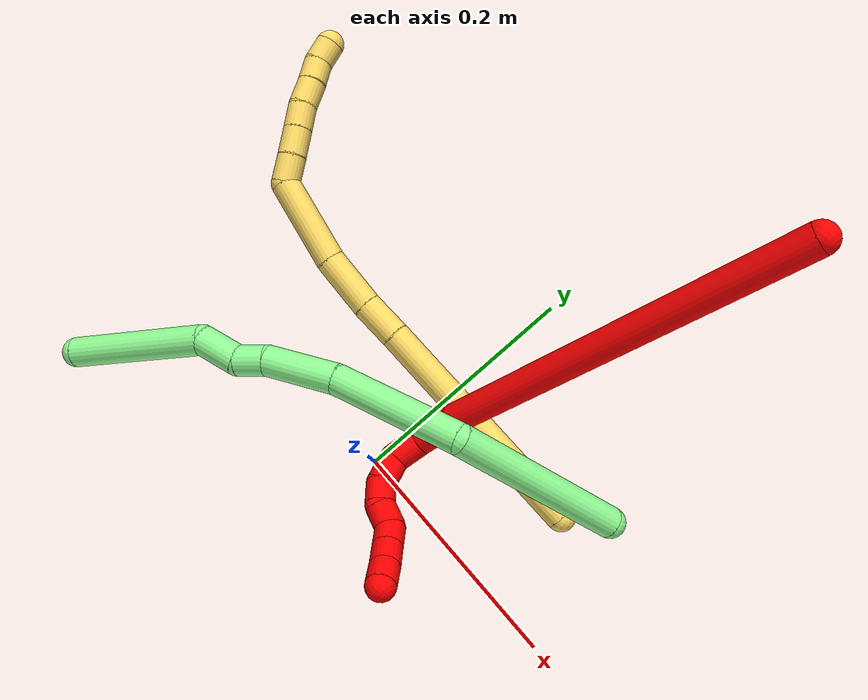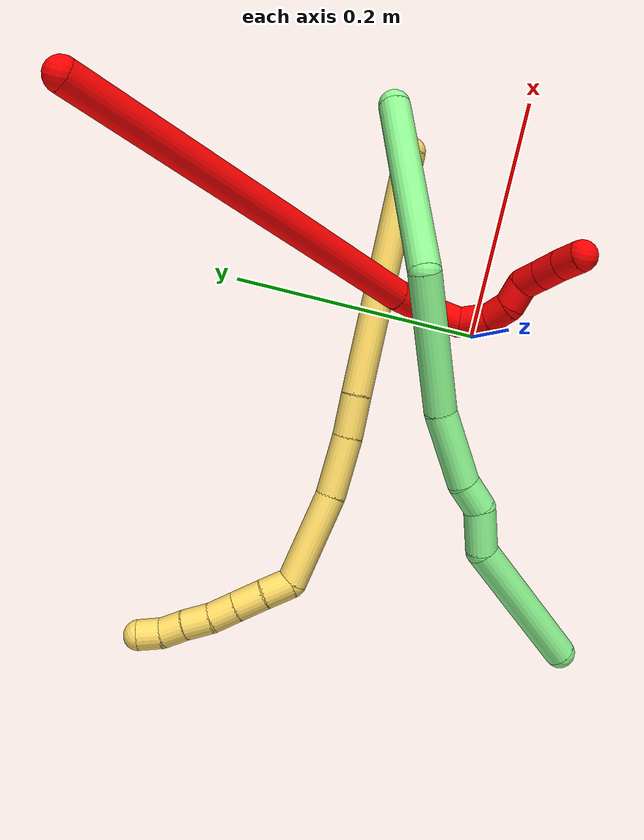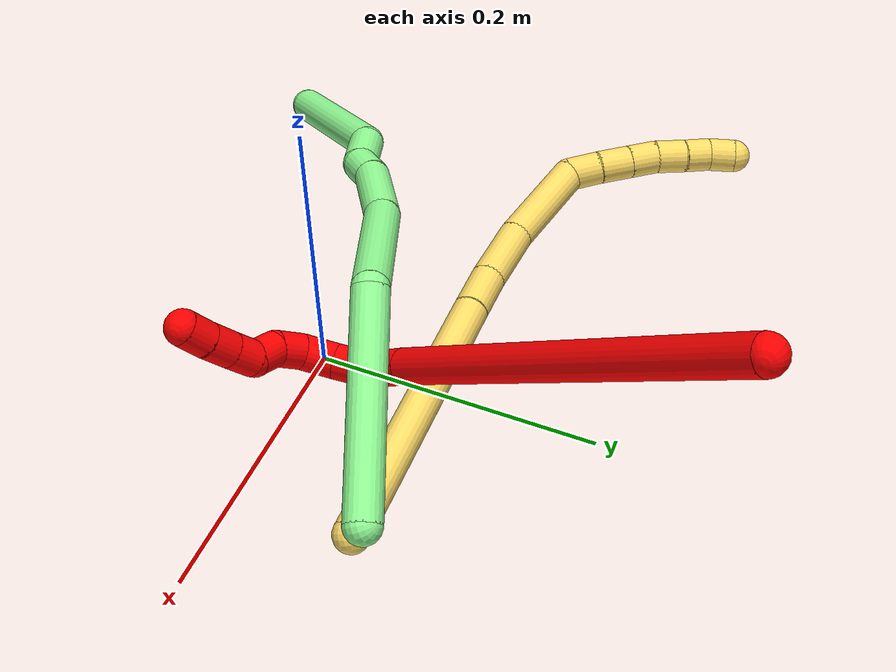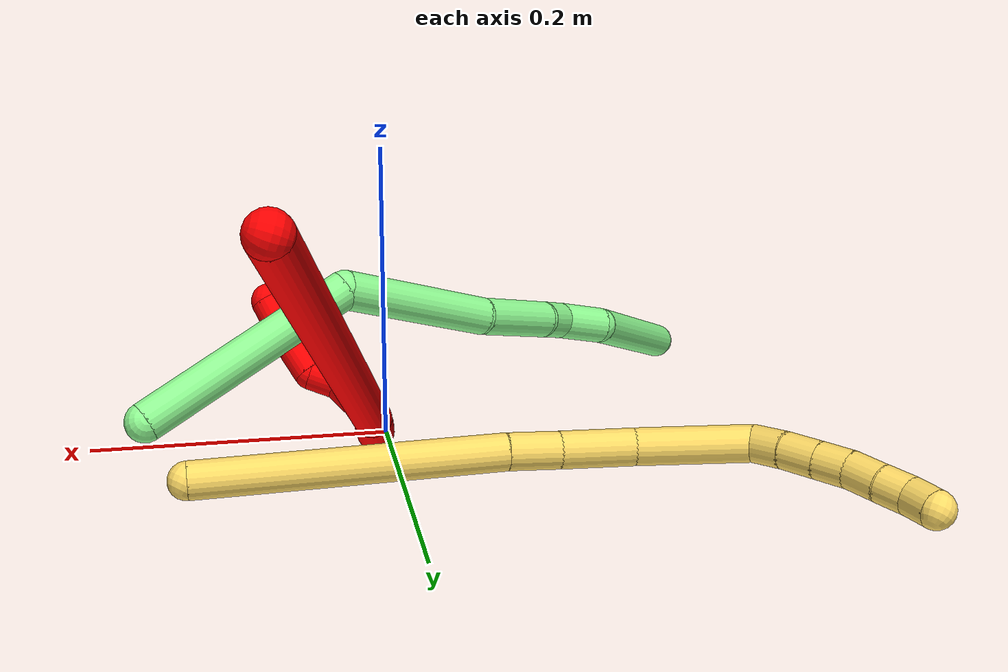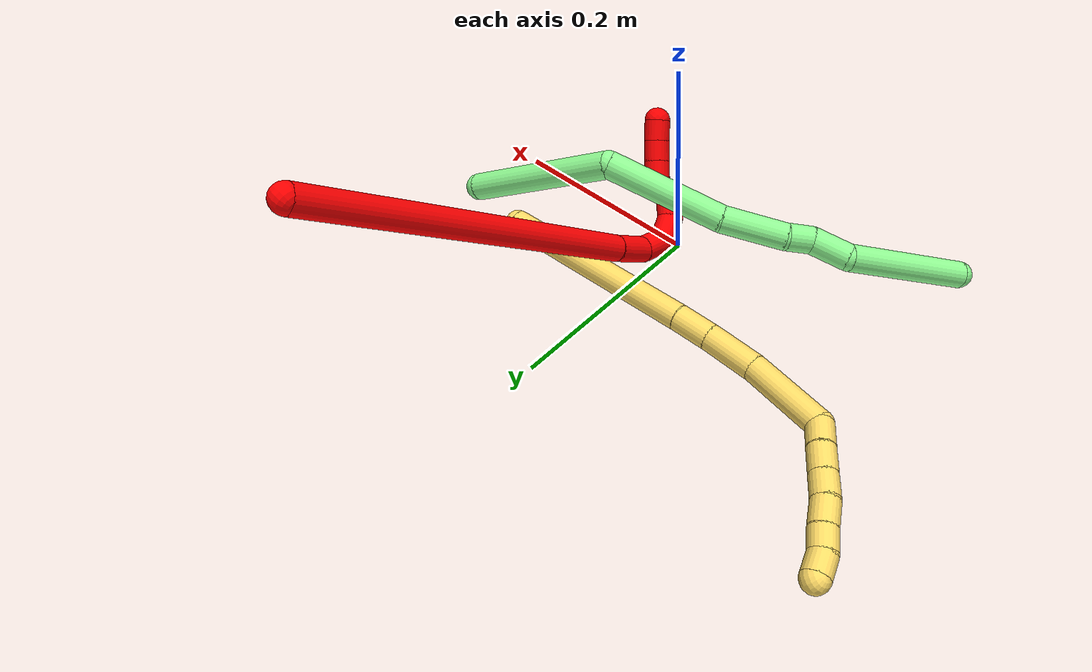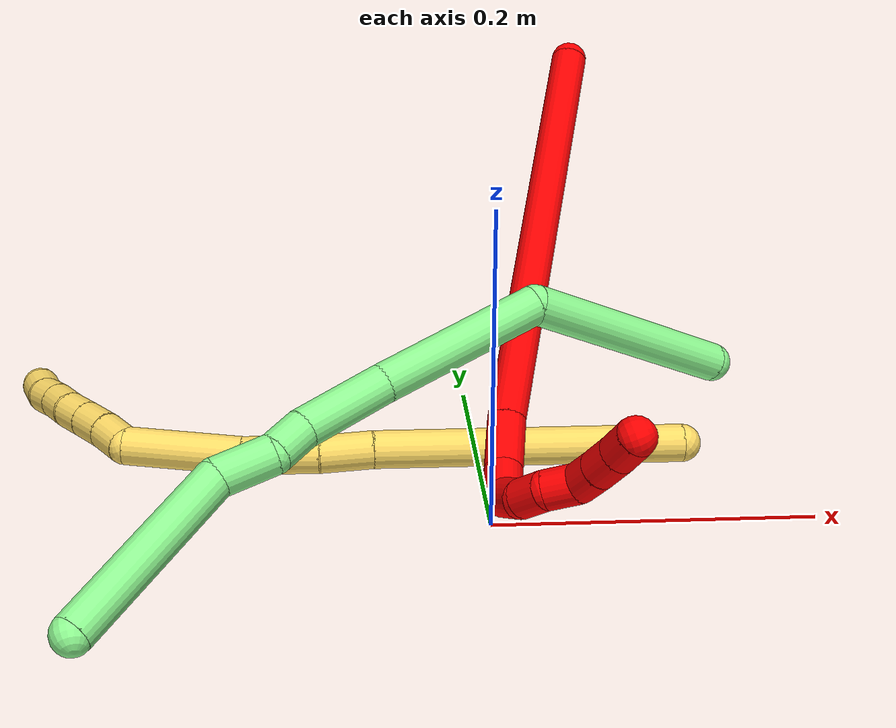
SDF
<sdf version="1.7">
 <world name="default">
  <model name="2">
   <static>0</static>
   <link name="2">
    <collision name="collision-cylinder-e_1_1_4">
     <pose>-0.049286 -0.130496 -0.066776 2.04377 -0.324347 -0.522774</pose>
     <geometry><cylinder><radius>0.0125</radius><length>0.309305</length></cylinder></geometry>
     <surface>
      <friction><ode><mu>1.16</mu><mu2>1.16</mu2><slip1>0</slip1><slip2>0</slip2></ode></friction>
      <contact><ode><kp>1e+06</kp><kd>1</kd><max_vel>0</max_vel><min_depth>0.001</min_depth></ode></contact>
     </surface>
    </collision>
    <visual name="visual-cylinder-e_1_1_4">
     <pose>-0.049286 -0.130496 -0.066776 2.04377 -0.324347 -0.522774</pose>
     <geometry><cylinder><radius>0.0125</radius><length>0.309305</length></cylinder></geometry>
     <material><ambient>1 0 0 1</ambient></material>
    </visual>
    <collision name="collision-cylinder-e_2_4_5">
     <pose>-0.104956 -0.277418 -0.139903 1.93978 -0.347762 -0.501716</pose>
     <geometry><cylinder><radius>0.0125</radius><length>0.037465</length></cylinder></geometry>
     <surface>
      <friction><ode><mu>1.16</mu><mu2>1.16</mu2><slip1>0</slip1><slip2>0</slip2></ode></friction>
      <contact><ode><kp>1e+06</kp><kd>1</kd><max_vel>0</max_vel><min_depth>0.001</min_depth></ode></contact>
     </surface>
    </collision>
    <visual name="visual-cylinder-e_2_4_5">
     <pose>-0.104956 -0.277418 -0.139903 1.93978 -0.347762 -0.501716</pose>
     <geometry><cylinder><radius>0.0125</radius><length>0.037465</length></cylinder></geometry>
     <material><ambient>1 0 0 1</ambient></material>
    </visual>
    <collision name="collision-cylinder-e_3_5_6">
     <pose>-0.120292 -0.303394 -0.148806 1.83178 -0.735899 -0.930455</pose>
     <geometry><cylinder><radius>0.0125</radius><length>0.026674</length></cylinder></geometry>
     <surface>
      <friction><ode><mu>1.16</mu><mu2>1.16</mu2><slip1>0</slip1><slip2>0</slip2></ode></friction>
      <contact><ode><kp>1e+06</kp><kd>1</kd><max_vel>0</max_vel><min_depth>0.001</min_depth></ode></contact>
     </surface>
    </collision>
    <visual name="visual-cylinder-e_3_5_6">
     <pose>-0.120292 -0.303394 -0.148806 1.83178 -0.735899 -0.930455</pose>
     <geometry><cylinder><radius>0.0125</radius><length>0.026674</length></cylinder></geometry>
     <material><ambient>1 0 0 1</ambient></material>
    </visual>
    <collision name="collision-cylinder-e_4_6_7">
     <pose>-0.139786 -0.31722 -0.145979 0.671642 -0.993217 -0.373879</pose>
     <geometry><cylinder><radius>0.0125</radius><length>0.025164</length></cylinder></geometry>
     <surface>
      <friction><ode><mu>1.16</mu><mu2>1.16</mu2><slip1>0</slip1><slip2>0</slip2></ode></friction>
      <contact><ode><kp>1e+06</kp><kd>1</kd><max_vel>0</max_vel><min_depth>0.001</min_depth></ode></contact>
     </surface>
    </collision>
    <visual name="visual-cylinder-e_4_6_7">
     <pose>-0.139786 -0.31722 -0.145979 0.671642 -0.993217 -0.373879</pose>
     <geometry><cylinder><radius>0.0125</radius><length>0.025164</length></cylinder></geometry>
     <material><ambient>1 0 0 1</ambient></material>
    </visual>
    <collision name="collision-cylinder-e_5_7_8">
     <pose>-0.157018 -0.322874 -0.132696 0.172761 -0.695018 -0.062711</pose>
     <geometry><cylinder><radius>0.0125</radius><length>0.020897</length></cylinder></geometry>
     <surface>
      <friction><ode><mu>1.16</mu><mu2>1.16</mu2><slip1>0</slip1><slip2>0</slip2></ode></friction>
      <contact><ode><kp>1e+06</kp><kd>1</kd><max_vel>0</max_vel><min_depth>0.001</min_depth></ode></contact>
     </surface>
    </collision>
    <visual name="visual-cylinder-e_5_7_8">
     <pose>-0.157018 -0.322874 -0.132696 0.172761 -0.695018 -0.062711</pose>
     <geometry><cylinder><radius>0.0125</radius><length>0.020897</length></cylinder></geometry>
     <material><ambient>1 0 0 1</ambient></material>
    </visual>
    <collision name="collision-cylinder-e_6_8_9">
     <pose>-0.165735 -0.326116 -0.11493 0.186601 -0.199185 -0.0187</pose>
     <geometry><cylinder><radius>0.0125</radius><length>0.020474</length></cylinder></geometry>
     <surface>
      <friction><ode><mu>1.16</mu><mu2>1.16</mu2><slip1>0</slip1><slip2>0</slip2></ode></friction>
      <contact><ode><kp>1e+06</kp><kd>1</kd><max_vel>0</max_vel><min_depth>0.001</min_depth></ode></contact>
     </surface>
    </collision>
    <visual name="visual-cylinder-e_6_8_9">
     <pose>-0.165735 -0.326116 -0.11493 0.186601 -0.199185 -0.0187</pose>
     <geometry><cylinder><radius>0.0125</radius><length>0.020474</length></cylinder></geometry>
     <material><ambient>1 0 0 1</ambient></material>
    </visual>
    <collision name="collision-cylinder-e_7_9_10">
     <pose>-0.175137 -0.327476 -0.098332 -0.074273 -0.829245 0.032702</pose>
     <geometry><cylinder><radius>0.0125</radius><length>0.020006</length></cylinder></geometry>
     <surface>
      <friction><ode><mu>1.16</mu><mu2>1.16</mu2><slip1>0</slip1><slip2>0</slip2></ode></friction>
      <contact><ode><kp>1e+06</kp><kd>1</kd><max_vel>0</max_vel><min_depth>0.001</min_depth></ode></contact>
     </surface>
    </collision>
    <visual name="visual-cylinder-e_7_9_10">
     <pose>-0.175137 -0.327476 -0.098332 -0.074273 -0.829245 0.032702</pose>
     <geometry><cylinder><radius>0.0125</radius><length>0.020006</length></cylinder></geometry>
     <material><ambient>1 0 0 1</ambient></material>
    </visual>
    <collision name="collision-cylinder-e_8_10_11">
     <pose>-0.189857 -0.326084 -0.084855 -0.131324 -0.823936 0.057452</pose>
     <geometry><cylinder><radius>0.0125</radius><length>0.020015</length></cylinder></geometry>
     <surface>
      <friction><ode><mu>1.16</mu><mu2>1.16</mu2><slip1>0</slip1><slip2>0</slip2></ode></friction>
      <contact><ode><kp>1e+06</kp><kd>1</kd><max_vel>0</max_vel><min_depth>0.001</min_depth></ode></contact>
     </surface>
    </collision>
    <visual name="visual-cylinder-e_8_10_11">
     <pose>-0.189857 -0.326084 -0.084855 -0.131324 -0.823936 0.057452</pose>
     <geometry><cylinder><radius>0.0125</radius><length>0.020015</length></cylinder></geometry>
     <material><ambient>1 0 0 1</ambient></material>
    </visual>
    <collision name="collision-cylinder-e_9_11_2">
     <pose>-0.204918 -0.32397 -0.071873 -0.193646 -0.881461 0.09156</pose>
     <geometry><cylinder><radius>0.0125</radius><length>0.020001</length></cylinder></geometry>
     <surface>
      <friction><ode><mu>1.16</mu><mu2>1.16</mu2><slip1>0</slip1><slip2>0</slip2></ode></friction>
      <contact><ode><kp>1e+06</kp><kd>1</kd><max_vel>0</max_vel><min_depth>0.001</min_depth></ode></contact>
     </surface>
    </collision>
    <visual name="visual-cylinder-e_9_11_2">
     <pose>-0.204918 -0.32397 -0.071873 -0.193646 -0.881461 0.09156</pose>
     <geometry><cylinder><radius>0.0125</radius><length>0.020001</length></cylinder></geometry>
     <material><ambient>1 0 0 1</ambient></material>
    </visual>
    <collision name="collision-sphere-2">
     <pose>-0.212635 -0.322746 -0.065631 0 -0 0</pose>
     <geometry><sphere><radius>0.0125</radius></sphere></geometry>
     <surface>
      <friction><ode><mu>1.16</mu><mu2>1.16</mu2><slip1>0</slip1><slip2>0</slip2></ode></friction>
      <contact><ode><kp>1e+06</kp><kd>1</kd><max_vel>0</max_vel><min_depth>0.001</min_depth></ode></contact>
     </surface>
    </collision>
    <visual name="visual-sphere-2">
     <pose>-0.212635 -0.322746 -0.065631 0 -0 0</pose>
     <geometry><sphere><radius>0.0125</radius></sphere></geometry>
     <material><ambient>1 0 0 1</ambient></material>
    </visual>
    <collision name="collision-sphere-11">
     <pose>-0.197201 -0.325194 -0.078115 0 -0 0</pose>
     <geometry><sphere><radius>0.0125</radius></sphere></geometry>
     <surface>
      <friction><ode><mu>1.16</mu><mu2>1.16</mu2><slip1>0</slip1><slip2>0</slip2></ode></friction>
      <contact><ode><kp>1e+06</kp><kd>1</kd><max_vel>0</max_vel><min_depth>0.001</min_depth></ode></contact>
     </surface>
    </collision>
    <visual name="visual-sphere-11">
     <pose>-0.197201 -0.325194 -0.078115 0 -0 0</pose>
     <geometry><sphere><radius>0.0125</radius></sphere></geometry>
     <material><ambient>1 0 0 1</ambient></material>
    </visual>
    <collision name="collision-sphere-10">
     <pose>-0.182514 -0.326974 -0.091595 0 -0 0</pose>
     <geometry><sphere><radius>0.0125</radius></sphere></geometry>
     <surface>
      <friction><ode><mu>1.16</mu><mu2>1.16</mu2><slip1>0</slip1><slip2>0</slip2></ode></friction>
      <contact><ode><kp>1e+06</kp><kd>1</kd><max_vel>0</max_vel><min_depth>0.001</min_depth></ode></contact>
     </surface>
    </collision>
    <visual name="visual-sphere-10">
     <pose>-0.182514 -0.326974 -0.091595 0 -0 0</pose>
     <geometry><sphere><radius>0.0125</radius></sphere></geometry>
     <material><ambient>1 0 0 1</ambient></material>
    </visual>
    <collision name="collision-sphere-9">
     <pose>-0.167761 -0.327977 -0.10507 0 -0 0</pose>
     <geometry><sphere><radius>0.0125</radius></sphere></geometry>
     <surface>
      <friction><ode><mu>1.16</mu><mu2>1.16</mu2><slip1>0</slip1><slip2>0</slip2></ode></friction>
      <contact><ode><kp>1e+06</kp><kd>1</kd><max_vel>0</max_vel><min_depth>0.001</min_depth></ode></contact>
     </surface>
    </collision>
    <visual name="visual-sphere-9">
     <pose>-0.167761 -0.327977 -0.10507 0 -0 0</pose>
     <geometry><sphere><radius>0.0125</radius></sphere></geometry>
     <material><ambient>1 0 0 1</ambient></material>
    </visual>
    <collision name="collision-sphere-4">
     <pose>-0.098572 -0.260992 -0.133552 0 -0 0</pose>
     <geometry><sphere><radius>0.0125</radius></sphere></geometry>
     <surface>
      <friction><ode><mu>1.16</mu><mu2>1.16</mu2><slip1>0</slip1><slip2>0</slip2></ode></friction>
      <contact><ode><kp>1e+06</kp><kd>1</kd><max_vel>0</max_vel><min_depth>0.001</min_depth></ode></contact>
     </surface>
    </collision>
    <visual name="visual-sphere-4">
     <pose>-0.098572 -0.260992 -0.133552 0 -0 0</pose>
     <geometry><sphere><radius>0.0125</radius></sphere></geometry>
     <material><ambient>1 0 0 1</ambient></material>
    </visual>
    <collision name="collision-sphere-1">
     <geometry><sphere><radius>0.0125</radius></sphere></geometry>
     <surface>
      <friction><ode><mu>1.16</mu><mu2>1.16</mu2><slip1>0</slip1><slip2>0</slip2></ode></friction>
      <contact><ode><kp>1e+06</kp><kd>1</kd><max_vel>0</max_vel><min_depth>0.001</min_depth></ode></contact>
     </surface>
    </collision>
    <visual name="visual-sphere-1">
     <geometry><sphere><radius>0.0125</radius></sphere></geometry>
     <material><ambient>1 0 0 1</ambient></material>
    </visual>
    <collision name="collision-sphere-8">
     <pose>-0.16371 -0.324254 -0.124791 0 -0 0</pose>
     <geometry><sphere><radius>0.0125</radius></sphere></geometry>
     <surface>
      <friction><ode><mu>1.16</mu><mu2>1.16</mu2><slip1>0</slip1><slip2>0</slip2></ode></friction>
      <contact><ode><kp>1e+06</kp><kd>1</kd><max_vel>0</max_vel><min_depth>0.001</min_depth></ode></contact>
     </surface>
    </collision>
    <visual name="visual-sphere-8">
     <pose>-0.16371 -0.324254 -0.124791 0 -0 0</pose>
     <geometry><sphere><radius>0.0125</radius></sphere></geometry>
     <material><ambient>1 0 0 1</ambient></material>
    </visual>
    <collision name="collision-sphere-5">
     <pose>-0.11134 -0.293843 -0.146255 0 -0 0</pose>
     <geometry><sphere><radius>0.0125</radius></sphere></geometry>
     <surface>
      <friction><ode><mu>1.16</mu><mu2>1.16</mu2><slip1>0</slip1><slip2>0</slip2></ode></friction>
      <contact><ode><kp>1e+06</kp><kd>1</kd><max_vel>0</max_vel><min_depth>0.001</min_depth></ode></contact>
     </surface>
    </collision>
    <visual name="visual-sphere-5">
     <pose>-0.11134 -0.293843 -0.146255 0 -0 0</pose>
     <geometry><sphere><radius>0.0125</radius></sphere></geometry>
     <material><ambient>1 0 0 1</ambient></material>
    </visual>
    <collision name="collision-sphere-6">
     <pose>-0.129245 -0.312945 -0.151357 0 -0 0</pose>
     <geometry><sphere><radius>0.0125</radius></sphere></geometry>
     <surface>
      <friction><ode><mu>1.16</mu><mu2>1.16</mu2><slip1>0</slip1><slip2>0</slip2></ode></friction>
      <contact><ode><kp>1e+06</kp><kd>1</kd><max_vel>0</max_vel><min_depth>0.001</min_depth></ode></contact>
     </surface>
    </collision>
    <visual name="visual-sphere-6">
     <pose>-0.129245 -0.312945 -0.151357 0 -0 0</pose>
     <geometry><sphere><radius>0.0125</radius></sphere></geometry>
     <material><ambient>1 0 0 1</ambient></material>
    </visual>
    <collision name="collision-sphere-7">
     <pose>-0.150327 -0.321495 -0.140601 0 -0 0</pose>
     <geometry><sphere><radius>0.0125</radius></sphere></geometry>
     <surface>
      <friction><ode><mu>1.16</mu><mu2>1.16</mu2><slip1>0</slip1><slip2>0</slip2></ode></friction>
      <contact><ode><kp>1e+06</kp><kd>1</kd><max_vel>0</max_vel><min_depth>0.001</min_depth></ode></contact>
     </surface>
    </collision>
    <visual name="visual-sphere-7">
     <pose>-0.150327 -0.321495 -0.140601 0 -0 0</pose>
     <geometry><sphere><radius>0.0125</radius></sphere></geometry>
     <material><ambient>1 0 0 1</ambient></material>
    </visual>
    <inertial>
     <pose>-0.087959 -0.199627 -0.087535 0 -0 0</pose>
     <mass>0.5</mass>
     <inertia>
      <ixx>0.000854</ixx>
      <ixy>0</ixy>
      <ixz>0</ixz>
      <iyy>-0.00182</iyy>
      <iyz>0</iyz>
      <izz>0.002894</izz>
     </inertia>
    </inertial>
   </link>
   <pose>0.085245 0.309718 0.221928 1.1243 0.611475 1.32199</pose>
  </model>
  <model name="5">
   <static>0</static>
   <link name="5">
    <collision name="collision-cylinder-e_1_1_4">
     <pose>-0.022255 -0.083192 0.054402 0.991658 -0.220256 -0.119478</pose>
     <geometry><cylinder><radius>0.0125</radius><length>0.203722</length></cylinder></geometry>
     <surface>
      <friction><ode><mu>1.16</mu><mu2>1.16</mu2><slip1>0</slip1><slip2>0</slip2></ode></friction>
      <contact><ode><kp>1e+06</kp><kd>1</kd><max_vel>0</max_vel><min_depth>0.001</min_depth></ode></contact>
     </surface>
    </collision>
    <visual name="visual-cylinder-e_1_1_4">
     <pose>-0.022255 -0.083192 0.054402 0.991658 -0.220256 -0.119478</pose>
     <geometry><cylinder><radius>0.0125</radius><length>0.203722</length></cylinder></geometry>
     <material><ambient>1 0.858824 0.4 1</ambient></material>
    </visual>
    <collision name="collision-cylinder-e_2_4_5">
     <pose>-0.04776 -0.181348 0.117382 1.0503 -0.1863 -0.108155</pose>
     <geometry><cylinder><radius>0.0125</radius><length>0.035105</length></cylinder></geometry>
     <surface>
      <friction><ode><mu>1.16</mu><mu2>1.16</mu2><slip1>0</slip1><slip2>0</slip2></ode></friction>
      <contact><ode><kp>1e+06</kp><kd>1</kd><max_vel>0</max_vel><min_depth>0.001</min_depth></ode></contact>
     </surface>
    </collision>
    <visual name="visual-cylinder-e_2_4_5">
     <pose>-0.04776 -0.181348 0.117382 1.0503 -0.1863 -0.108155</pose>
     <geometry><cylinder><radius>0.0125</radius><length>0.035105</length></cylinder></geometry>
     <material><ambient>1 0.858824 0.4 1</ambient></material>
    </visual>
    <collision name="collision-cylinder-e_3_5_6">
     <pose>-0.057718 -0.217119 0.138294 1.0357 -0.270491 -0.154738</pose>
     <geometry><cylinder><radius>0.0125</radius><length>0.0502</length></cylinder></geometry>
     <surface>
      <friction><ode><mu>1.16</mu><mu2>1.16</mu2><slip1>0</slip1><slip2>0</slip2></ode></friction>
      <contact><ode><kp>1e+06</kp><kd>1</kd><max_vel>0</max_vel><min_depth>0.001</min_depth></ode></contact>
     </surface>
    </collision>
    <visual name="visual-cylinder-e_3_5_6">
     <pose>-0.057718 -0.217119 0.138294 1.0357 -0.270491 -0.154738</pose>
     <geometry><cylinder><radius>0.0125</radius><length>0.0502</length></cylinder></geometry>
     <material><ambient>1 0.858824 0.4 1</ambient></material>
    </visual>
    <collision name="collision-cylinder-e_4_6_7">
     <pose>-0.080258 -0.268475 0.16847 1.04219 -0.420795 -0.243953</pose>
     <geometry><cylinder><radius>0.0125</radius><length>0.07752</length></cylinder></geometry>
     <surface>
      <friction><ode><mu>1.16</mu><mu2>1.16</mu2><slip1>0</slip1><slip2>0</slip2></ode></friction>
      <contact><ode><kp>1e+06</kp><kd>1</kd><max_vel>0</max_vel><min_depth>0.001</min_depth></ode></contact>
     </surface>
    </collision>
    <visual name="visual-cylinder-e_4_6_7">
     <pose>-0.080258 -0.268475 0.16847 1.04219 -0.420795 -0.243953</pose>
     <geometry><cylinder><radius>0.0125</radius><length>0.07752</length></cylinder></geometry>
     <material><ambient>1 0.858824 0.4 1</ambient></material>
    </visual>
    <collision name="collision-cylinder-e_5_7_8">
     <pose>-0.106969 -0.304293 0.186828 1.47339 -1.11792 -1.03215</pose>
     <geometry><cylinder><radius>0.0125</radius><length>0.024195</length></cylinder></geometry>
     <surface>
      <friction><ode><mu>1.16</mu><mu2>1.16</mu2><slip1>0</slip1><slip2>0</slip2></ode></friction>
      <contact><ode><kp>1e+06</kp><kd>1</kd><max_vel>0</max_vel><min_depth>0.001</min_depth></ode></contact>
     </surface>
    </collision>
    <visual name="visual-cylinder-e_5_7_8">
     <pose>-0.106969 -0.304293 0.186828 1.47339 -1.11792 -1.03215</pose>
     <geometry><cylinder><radius>0.0125</radius><length>0.024195</length></cylinder></geometry>
     <material><ambient>1 0.858824 0.4 1</ambient></material>
    </visual>
    <collision name="collision-cylinder-e_6_8_9">
     <pose>-0.1284 -0.31568 0.187359 1.56808 -1.04535 -1.043</pose>
     <geometry><cylinder><radius>0.0125</radius><length>0.024397</length></cylinder></geometry>
     <surface>
      <friction><ode><mu>1.16</mu><mu2>1.16</mu2><slip1>0</slip1><slip2>0</slip2></ode></friction>
      <contact><ode><kp>1e+06</kp><kd>1</kd><max_vel>0</max_vel><min_depth>0.001</min_depth></ode></contact>
     </surface>
    </collision>
    <visual name="visual-cylinder-e_6_8_9">
     <pose>-0.1284 -0.31568 0.187359 1.56808 -1.04535 -1.043</pose>
     <geometry><cylinder><radius>0.0125</radius><length>0.024397</length></cylinder></geometry>
     <material><ambient>1 0.858824 0.4 1</ambient></material>
    </visual>
    <collision name="collision-cylinder-e_7_9_10">
     <pose>-0.148418 -0.327405 0.187382 1.56969 -1.03603 -1.03508</pose>
     <geometry><cylinder><radius>0.0125</radius><length>0.022003</length></cylinder></geometry>
     <surface>
      <friction><ode><mu>1.16</mu><mu2>1.16</mu2><slip1>0</slip1><slip2>0</slip2></ode></friction>
      <contact><ode><kp>1e+06</kp><kd>1</kd><max_vel>0</max_vel><min_depth>0.001</min_depth></ode></contact>
     </surface>
    </collision>
    <visual name="visual-cylinder-e_7_9_10">
     <pose>-0.148418 -0.327405 0.187382 1.56969 -1.03603 -1.03508</pose>
     <geometry><cylinder><radius>0.0125</radius><length>0.022003</length></cylinder></geometry>
     <material><ambient>1 0.858824 0.4 1</ambient></material>
    </visual>
    <collision name="collision-cylinder-e_8_10_11">
     <pose>-0.168039 -0.337964 0.185717 1.89626 -1.09553 -1.40864</pose>
     <geometry><cylinder><radius>0.0125</radius><length>0.022842</length></cylinder></geometry>
     <surface>
      <friction><ode><mu>1.16</mu><mu2>1.16</mu2><slip1>0</slip1><slip2>0</slip2></ode></friction>
      <contact><ode><kp>1e+06</kp><kd>1</kd><max_vel>0</max_vel><min_depth>0.001</min_depth></ode></contact>
     </surface>
    </collision>
    <visual name="visual-cylinder-e_8_10_11">
     <pose>-0.168039 -0.337964 0.185717 1.89626 -1.09553 -1.40864</pose>
     <geometry><cylinder><radius>0.0125</radius><length>0.022842</length></cylinder></geometry>
     <material><ambient>1 0.858824 0.4 1</ambient></material>
    </visual>
    <collision name="collision-cylinder-e_9_11_12">
     <pose>-0.186713 -0.348037 0.182885 1.79378 -1.0184 -1.22021</pose>
     <geometry><cylinder><radius>0.0125</radius><length>0.020016</length></cylinder></geometry>
     <surface>
      <friction><ode><mu>1.16</mu><mu2>1.16</mu2><slip1>0</slip1><slip2>0</slip2></ode></friction>
      <contact><ode><kp>1e+06</kp><kd>1</kd><max_vel>0</max_vel><min_depth>0.001</min_depth></ode></contact>
     </surface>
    </collision>
    <visual name="visual-cylinder-e_9_11_12">
     <pose>-0.186713 -0.348037 0.182885 1.79378 -1.0184 -1.22021</pose>
     <geometry><cylinder><radius>0.0125</radius><length>0.020016</length></cylinder></geometry>
     <material><ambient>1 0.858824 0.4 1</ambient></material>
    </visual>
    <collision name="collision-cylinder-e_10_12_2">
     <pose>-0.204565 -0.355884 0.179384 2.2801 -1.20331 -1.96194</pose>
     <geometry><cylinder><radius>0.0125</radius><length>0.020001</length></cylinder></geometry>
     <surface>
      <friction><ode><mu>1.16</mu><mu2>1.16</mu2><slip1>0</slip1><slip2>0</slip2></ode></friction>
      <contact><ode><kp>1e+06</kp><kd>1</kd><max_vel>0</max_vel><min_depth>0.001</min_depth></ode></contact>
     </surface>
    </collision>
    <visual name="visual-cylinder-e_10_12_2">
     <pose>-0.204565 -0.355884 0.179384 2.2801 -1.20331 -1.96194</pose>
     <geometry><cylinder><radius>0.0125</radius><length>0.020001</length></cylinder></geometry>
     <material><ambient>1 0.858824 0.4 1</ambient></material>
    </visual>
    <collision name="collision-sphere-2">
     <pose>-0.213898 -0.358611 0.177043 0 -0 0</pose>
     <geometry><sphere><radius>0.0125</radius></sphere></geometry>
     <surface>
      <friction><ode><mu>1.16</mu><mu2>1.16</mu2><slip1>0</slip1><slip2>0</slip2></ode></friction>
      <contact><ode><kp>1e+06</kp><kd>1</kd><max_vel>0</max_vel><min_depth>0.001</min_depth></ode></contact>
     </surface>
    </collision>
    <visual name="visual-sphere-2">
     <pose>-0.213898 -0.358611 0.177043 0 -0 0</pose>
     <geometry><sphere><radius>0.0125</radius></sphere></geometry>
     <material><ambient>1 0.858824 0.4 1</ambient></material>
    </visual>
    <collision name="collision-sphere-12">
     <pose>-0.195232 -0.353158 0.181724 0 -0 0</pose>
     <geometry><sphere><radius>0.0125</radius></sphere></geometry>
     <surface>
      <friction><ode><mu>1.16</mu><mu2>1.16</mu2><slip1>0</slip1><slip2>0</slip2></ode></friction>
      <contact><ode><kp>1e+06</kp><kd>1</kd><max_vel>0</max_vel><min_depth>0.001</min_depth></ode></contact>
     </surface>
    </collision>
    <visual name="visual-sphere-12">
     <pose>-0.195232 -0.353158 0.181724 0 -0 0</pose>
     <geometry><sphere><radius>0.0125</radius></sphere></geometry>
     <material><ambient>1 0.858824 0.4 1</ambient></material>
    </visual>
    <collision name="collision-sphere-11">
     <pose>-0.178194 -0.342915 0.184046 0 -0 0</pose>
     <geometry><sphere><radius>0.0125</radius></sphere></geometry>
     <surface>
      <friction><ode><mu>1.16</mu><mu2>1.16</mu2><slip1>0</slip1><slip2>0</slip2></ode></friction>
      <contact><ode><kp>1e+06</kp><kd>1</kd><max_vel>0</max_vel><min_depth>0.001</min_depth></ode></contact>
     </surface>
    </collision>
    <visual name="visual-sphere-11">
     <pose>-0.178194 -0.342915 0.184046 0 -0 0</pose>
     <geometry><sphere><radius>0.0125</radius></sphere></geometry>
     <material><ambient>1 0.858824 0.4 1</ambient></material>
    </visual>
    <collision name="collision-sphere-10">
     <pose>-0.157884 -0.333012 0.187388 0 -0 0</pose>
     <geometry><sphere><radius>0.0125</radius></sphere></geometry>
     <surface>
      <friction><ode><mu>1.16</mu><mu2>1.16</mu2><slip1>0</slip1><slip2>0</slip2></ode></friction>
      <contact><ode><kp>1e+06</kp><kd>1</kd><max_vel>0</max_vel><min_depth>0.001</min_depth></ode></contact>
     </surface>
    </collision>
    <visual name="visual-sphere-10">
     <pose>-0.157884 -0.333012 0.187388 0 -0 0</pose>
     <geometry><sphere><radius>0.0125</radius></sphere></geometry>
     <material><ambient>1 0.858824 0.4 1</ambient></material>
    </visual>
    <collision name="collision-sphere-9">
     <pose>-0.138953 -0.321799 0.187376 0 -0 0</pose>
     <geometry><sphere><radius>0.0125</radius></sphere></geometry>
     <surface>
      <friction><ode><mu>1.16</mu><mu2>1.16</mu2><slip1>0</slip1><slip2>0</slip2></ode></friction>
      <contact><ode><kp>1e+06</kp><kd>1</kd><max_vel>0</max_vel><min_depth>0.001</min_depth></ode></contact>
     </surface>
    </collision>
    <visual name="visual-sphere-9">
     <pose>-0.138953 -0.321799 0.187376 0 -0 0</pose>
     <geometry><sphere><radius>0.0125</radius></sphere></geometry>
     <material><ambient>1 0.858824 0.4 1</ambient></material>
    </visual>
    <collision name="collision-sphere-4">
     <pose>-0.044509 -0.166383 0.108804 0 -0 0</pose>
     <geometry><sphere><radius>0.0125</radius></sphere></geometry>
     <surface>
      <friction><ode><mu>1.16</mu><mu2>1.16</mu2><slip1>0</slip1><slip2>0</slip2></ode></friction>
      <contact><ode><kp>1e+06</kp><kd>1</kd><max_vel>0</max_vel><min_depth>0.001</min_depth></ode></contact>
     </surface>
    </collision>
    <visual name="visual-sphere-4">
     <pose>-0.044509 -0.166383 0.108804 0 -0 0</pose>
     <geometry><sphere><radius>0.0125</radius></sphere></geometry>
     <material><ambient>1 0.858824 0.4 1</ambient></material>
    </visual>
    <collision name="collision-sphere-1">
     <geometry><sphere><radius>0.0125</radius></sphere></geometry>
     <surface>
      <friction><ode><mu>1.16</mu><mu2>1.16</mu2><slip1>0</slip1><slip2>0</slip2></ode></friction>
      <contact><ode><kp>1e+06</kp><kd>1</kd><max_vel>0</max_vel><min_depth>0.001</min_depth></ode></contact>
     </surface>
    </collision>
    <visual name="visual-sphere-1">
     <geometry><sphere><radius>0.0125</radius></sphere></geometry>
     <material><ambient>1 0.858824 0.4 1</ambient></material>
    </visual>
    <collision name="collision-sphere-8">
     <pose>-0.117847 -0.309561 0.187342 0 -0 0</pose>
     <geometry><sphere><radius>0.0125</radius></sphere></geometry>
     <surface>
      <friction><ode><mu>1.16</mu><mu2>1.16</mu2><slip1>0</slip1><slip2>0</slip2></ode></friction>
      <contact><ode><kp>1e+06</kp><kd>1</kd><max_vel>0</max_vel><min_depth>0.001</min_depth></ode></contact>
     </surface>
    </collision>
    <visual name="visual-sphere-8">
     <pose>-0.117847 -0.309561 0.187342 0 -0 0</pose>
     <geometry><sphere><radius>0.0125</radius></sphere></geometry>
     <material><ambient>1 0.858824 0.4 1</ambient></material>
    </visual>
    <collision name="collision-sphere-5">
     <pose>-0.051012 -0.196313 0.12596 0 -0 0</pose>
     <geometry><sphere><radius>0.0125</radius></sphere></geometry>
     <surface>
      <friction><ode><mu>1.16</mu><mu2>1.16</mu2><slip1>0</slip1><slip2>0</slip2></ode></friction>
      <contact><ode><kp>1e+06</kp><kd>1</kd><max_vel>0</max_vel><min_depth>0.001</min_depth></ode></contact>
     </surface>
    </collision>
    <visual name="visual-sphere-5">
     <pose>-0.051012 -0.196313 0.12596 0 -0 0</pose>
     <geometry><sphere><radius>0.0125</radius></sphere></geometry>
     <material><ambient>1 0.858824 0.4 1</ambient></material>
    </visual>
    <collision name="collision-sphere-6">
     <pose>-0.064425 -0.237925 0.150628 0 -0 0</pose>
     <geometry><sphere><radius>0.0125</radius></sphere></geometry>
     <surface>
      <friction><ode><mu>1.16</mu><mu2>1.16</mu2><slip1>0</slip1><slip2>0</slip2></ode></friction>
      <contact><ode><kp>1e+06</kp><kd>1</kd><max_vel>0</max_vel><min_depth>0.001</min_depth></ode></contact>
     </surface>
    </collision>
    <visual name="visual-sphere-6">
     <pose>-0.064425 -0.237925 0.150628 0 -0 0</pose>
     <geometry><sphere><radius>0.0125</radius></sphere></geometry>
     <material><ambient>1 0.858824 0.4 1</ambient></material>
    </visual>
    <collision name="collision-sphere-7">
     <pose>-0.096091 -0.299025 0.186313 0 -0 0</pose>
     <geometry><sphere><radius>0.0125</radius></sphere></geometry>
     <surface>
      <friction><ode><mu>1.16</mu><mu2>1.16</mu2><slip1>0</slip1><slip2>0</slip2></ode></friction>
      <contact><ode><kp>1e+06</kp><kd>1</kd><max_vel>0</max_vel><min_depth>0.001</min_depth></ode></contact>
     </surface>
    </collision>
    <visual name="visual-sphere-7">
     <pose>-0.096091 -0.299025 0.186313 0 -0 0</pose>
     <geometry><sphere><radius>0.0125</radius></sphere></geometry>
     <material><ambient>1 0.858824 0.4 1</ambient></material>
    </visual>
    <inertial>
     <pose>-0.071965 -0.198195 0.119821 0 -0 0</pose>
     <mass>0.5</mass>
     <inertia>
      <ixx>0.00063</ixx>
      <ixy>0</ixy>
      <ixz>0</ixz>
      <iyy>0.000317</iyy>
      <iyz>0</iyz>
      <izz>0.000835</izz>
     </inertia>
    </inertial>
   </link>
   <pose>0.134587 0.086533 0.011499 0.641724 0.331585 -1.31828</pose>
  </model>
  <model name="13">
   <static>0</static>
   <link name="13">
    <collision name="collision-cylinder-e_1_1_4">
     <pose>-0.046031 -0.057749 -0.005483 1.66546 -0.670777 -0.731916</pose>
     <geometry><cylinder><radius>0.0125</radius><length>0.148105</length></cylinder></geometry>
     <surface>
      <friction><ode><mu>1.16</mu><mu2>1.16</mu2><slip1>0</slip1><slip2>0</slip2></ode></friction>
      <contact><ode><kp>1e+06</kp><kd>1</kd><max_vel>0</max_vel><min_depth>0.001</min_depth></ode></contact>
     </surface>
    </collision>
    <visual name="visual-cylinder-e_1_1_4">
     <pose>-0.046031 -0.057749 -0.005483 1.66546 -0.670777 -0.731916</pose>
     <geometry><cylinder><radius>0.0125</radius><length>0.148105</length></cylinder></geometry>
     <material><ambient>0.564706 0.984314 0.572549 1</ambient></material>
    </visual>
    <collision name="collision-cylinder-e_2_4_5">
     <pose>-0.092885 -0.167275 0.00523 1.26763 -0.015177 -0.011155</pose>
     <geometry><cylinder><radius>0.0125</radius><length>0.108517</length></cylinder></geometry>
     <surface>
      <friction><ode><mu>1.16</mu><mu2>1.16</mu2><slip1>0</slip1><slip2>0</slip2></ode></friction>
      <contact><ode><kp>1e+06</kp><kd>1</kd><max_vel>0</max_vel><min_depth>0.001</min_depth></ode></contact>
     </surface>
    </collision>
    <visual name="visual-cylinder-e_2_4_5">
     <pose>-0.092885 -0.167275 0.00523 1.26763 -0.015177 -0.011155</pose>
     <geometry><cylinder><radius>0.0125</radius><length>0.108517</length></cylinder></geometry>
     <material><ambient>0.564706 0.984314 0.572549 1</ambient></material>
    </visual>
    <collision name="collision-cylinder-e_3_5_6">
     <pose>-0.098433 -0.245669 0.033851 1.13405 -0.159475 -0.101679</pose>
     <geometry><cylinder><radius>0.0125</radius><length>0.059501</length></cylinder></geometry>
     <surface>
      <friction><ode><mu>1.16</mu><mu2>1.16</mu2><slip1>0</slip1><slip2>0</slip2></ode></friction>
      <contact><ode><kp>1e+06</kp><kd>1</kd><max_vel>0</max_vel><min_depth>0.001</min_depth></ode></contact>
     </surface>
    </collision>
    <visual name="visual-cylinder-e_3_5_6">
     <pose>-0.098433 -0.245669 0.033851 1.13405 -0.159475 -0.101679</pose>
     <geometry><cylinder><radius>0.0125</radius><length>0.059501</length></cylinder></geometry>
     <material><ambient>0.564706 0.984314 0.572549 1</ambient></material>
    </visual>
    <collision name="collision-cylinder-e_4_6_7">
     <pose>-0.105696 -0.281698 0.054045 0.880734 -0.205101 -0.096914</pose>
     <geometry><cylinder><radius>0.0125</radius><length>0.024932</length></cylinder></geometry>
     <surface>
      <friction><ode><mu>1.16</mu><mu2>1.16</mu2><slip1>0</slip1><slip2>0</slip2></ode></friction>
      <contact><ode><kp>1e+06</kp><kd>1</kd><max_vel>0</max_vel><min_depth>0.001</min_depth></ode></contact>
     </surface>
    </collision>
    <visual name="visual-cylinder-e_4_6_7">
     <pose>-0.105696 -0.281698 0.054045 0.880734 -0.205101 -0.096914</pose>
     <geometry><cylinder><radius>0.0125</radius><length>0.024932</length></cylinder></geometry>
     <material><ambient>0.564706 0.984314 0.572549 1</ambient></material>
    </visual>
    <collision name="collision-cylinder-e_5_7_8">
     <pose>-0.10915 -0.308697 0.065749 1.35068 -0.050737 -0.040642</pose>
     <geometry><cylinder><radius>0.0125</radius><length>0.03609</length></cylinder></geometry>
     <surface>
      <friction><ode><mu>1.16</mu><mu2>1.16</mu2><slip1>0</slip1><slip2>0</slip2></ode></friction>
      <contact><ode><kp>1e+06</kp><kd>1</kd><max_vel>0</max_vel><min_depth>0.001</min_depth></ode></contact>
     </surface>
    </collision>
    <visual name="visual-cylinder-e_5_7_8">
     <pose>-0.10915 -0.308697 0.065749 1.35068 -0.050737 -0.040642</pose>
     <geometry><cylinder><radius>0.0125</radius><length>0.03609</length></cylinder></geometry>
     <material><ambient>0.564706 0.984314 0.572549 1</ambient></material>
    </visual>
    <collision name="collision-cylinder-e_6_8_2">
     <pose>-0.118469 -0.369902 0.112112 0.799228 -0.137242 -0.058037</pose>
     <geometry><cylinder><radius>0.0125</radius><length>0.122855</length></cylinder></geometry>
     <surface>
      <friction><ode><mu>1.16</mu><mu2>1.16</mu2><slip1>0</slip1><slip2>0</slip2></ode></friction>
      <contact><ode><kp>1e+06</kp><kd>1</kd><max_vel>0</max_vel><min_depth>0.001</min_depth></ode></contact>
     </surface>
    </collision>
    <visual name="visual-cylinder-e_6_8_2">
     <pose>-0.118469 -0.369902 0.112112 0.799228 -0.137242 -0.058037</pose>
     <geometry><cylinder><radius>0.0125</radius><length>0.122855</length></cylinder></geometry>
     <material><ambient>0.564706 0.984314 0.572549 1</ambient></material>
    </visual>
    <collision name="collision-sphere-2">
     <pose>-0.126873 -0.41352 0.15454 0 -0 0</pose>
     <geometry><sphere><radius>0.0125</radius></sphere></geometry>
     <surface>
      <friction><ode><mu>1.16</mu><mu2>1.16</mu2><slip1>0</slip1><slip2>0</slip2></ode></friction>
      <contact><ode><kp>1e+06</kp><kd>1</kd><max_vel>0</max_vel><min_depth>0.001</min_depth></ode></contact>
     </surface>
    </collision>
    <visual name="visual-sphere-2">
     <pose>-0.126873 -0.41352 0.15454 0 -0 0</pose>
     <geometry><sphere><radius>0.0125</radius></sphere></geometry>
     <material><ambient>0.564706 0.984314 0.572549 1</ambient></material>
    </visual>
    <collision name="collision-sphere-4">
     <pose>-0.092061 -0.115497 -0.010967 0 -0 0</pose>
     <geometry><sphere><radius>0.0125</radius></sphere></geometry>
     <surface>
      <friction><ode><mu>1.16</mu><mu2>1.16</mu2><slip1>0</slip1><slip2>0</slip2></ode></friction>
      <contact><ode><kp>1e+06</kp><kd>1</kd><max_vel>0</max_vel><min_depth>0.001</min_depth></ode></contact>
     </surface>
    </collision>
    <visual name="visual-sphere-4">
     <pose>-0.092061 -0.115497 -0.010967 0 -0 0</pose>
     <geometry><sphere><radius>0.0125</radius></sphere></geometry>
     <material><ambient>0.564706 0.984314 0.572549 1</ambient></material>
    </visual>
    <collision name="collision-sphere-1">
     <geometry><sphere><radius>0.0125</radius></sphere></geometry>
     <surface>
      <friction><ode><mu>1.16</mu><mu2>1.16</mu2><slip1>0</slip1><slip2>0</slip2></ode></friction>
      <contact><ode><kp>1e+06</kp><kd>1</kd><max_vel>0</max_vel><min_depth>0.001</min_depth></ode></contact>
     </surface>
    </collision>
    <visual name="visual-sphere-1">
     <geometry><sphere><radius>0.0125</radius></sphere></geometry>
     <material><ambient>0.564706 0.984314 0.572549 1</ambient></material>
    </visual>
    <collision name="collision-sphere-8">
     <pose>-0.110065 -0.326283 0.069684 0 -0 0</pose>
     <geometry><sphere><radius>0.0125</radius></sphere></geometry>
     <surface>
      <friction><ode><mu>1.16</mu><mu2>1.16</mu2><slip1>0</slip1><slip2>0</slip2></ode></friction>
      <contact><ode><kp>1e+06</kp><kd>1</kd><max_vel>0</max_vel><min_depth>0.001</min_depth></ode></contact>
     </surface>
    </collision>
    <visual name="visual-sphere-8">
     <pose>-0.110065 -0.326283 0.069684 0 -0 0</pose>
     <geometry><sphere><radius>0.0125</radius></sphere></geometry>
     <material><ambient>0.564706 0.984314 0.572549 1</ambient></material>
    </visual>
    <collision name="collision-sphere-5">
     <pose>-0.093708 -0.219053 0.021427 0 -0 0</pose>
     <geometry><sphere><radius>0.0125</radius></sphere></geometry>
     <surface>
      <friction><ode><mu>1.16</mu><mu2>1.16</mu2><slip1>0</slip1><slip2>0</slip2></ode></friction>
      <contact><ode><kp>1e+06</kp><kd>1</kd><max_vel>0</max_vel><min_depth>0.001</min_depth></ode></contact>
     </surface>
    </collision>
    <visual name="visual-sphere-5">
     <pose>-0.093708 -0.219053 0.021427 0 -0 0</pose>
     <geometry><sphere><radius>0.0125</radius></sphere></geometry>
     <material><ambient>0.564706 0.984314 0.572549 1</ambient></material>
    </visual>
    <collision name="collision-sphere-6">
     <pose>-0.103157 -0.272285 0.046276 0 -0 0</pose>
     <geometry><sphere><radius>0.0125</radius></sphere></geometry>
     <surface>
      <friction><ode><mu>1.16</mu><mu2>1.16</mu2><slip1>0</slip1><slip2>0</slip2></ode></friction>
      <contact><ode><kp>1e+06</kp><kd>1</kd><max_vel>0</max_vel><min_depth>0.001</min_depth></ode></contact>
     </surface>
    </collision>
    <visual name="visual-sphere-6">
     <pose>-0.103157 -0.272285 0.046276 0 -0 0</pose>
     <geometry><sphere><radius>0.0125</radius></sphere></geometry>
     <material><ambient>0.564706 0.984314 0.572549 1</ambient></material>
    </visual>
    <collision name="collision-sphere-7">
     <pose>-0.108235 -0.29111 0.061814 0 -0 0</pose>
     <geometry><sphere><radius>0.0125</radius></sphere></geometry>
     <surface>
      <friction><ode><mu>1.16</mu><mu2>1.16</mu2><slip1>0</slip1><slip2>0</slip2></ode></friction>
      <contact><ode><kp>1e+06</kp><kd>1</kd><max_vel>0</max_vel><min_depth>0.001</min_depth></ode></contact>
     </surface>
    </collision>
    <visual name="visual-sphere-7">
     <pose>-0.108235 -0.29111 0.061814 0 -0 0</pose>
     <geometry><sphere><radius>0.0125</radius></sphere></geometry>
     <material><ambient>0.564706 0.984314 0.572549 1</ambient></material>
    </visual>
    <inertial>
     <pose>-0.087766 -0.209862 0.038527 0 -0 0</pose>
     <mass>0.5</mass>
     <inertia><ixx>0.000289</ixx><ixy>0</ixy><ixz>0</ixz><iyy>6.1e-05</iyy><iyz>0</iyz><izz>0.00067</izz></inertia>
    </inertial>
   </link>
   <pose>0.15617 0.107626 0.059999 2.78033 1.00575 1.36253</pose>
  </model>
 </world>
</sdf>
